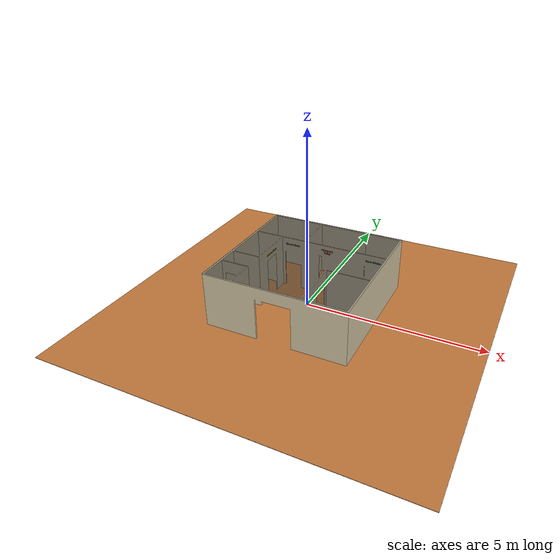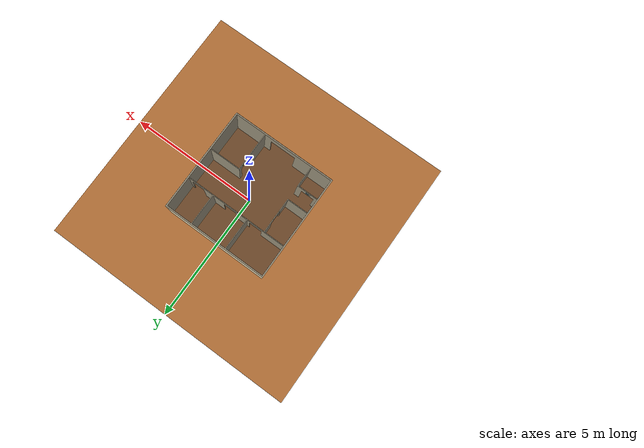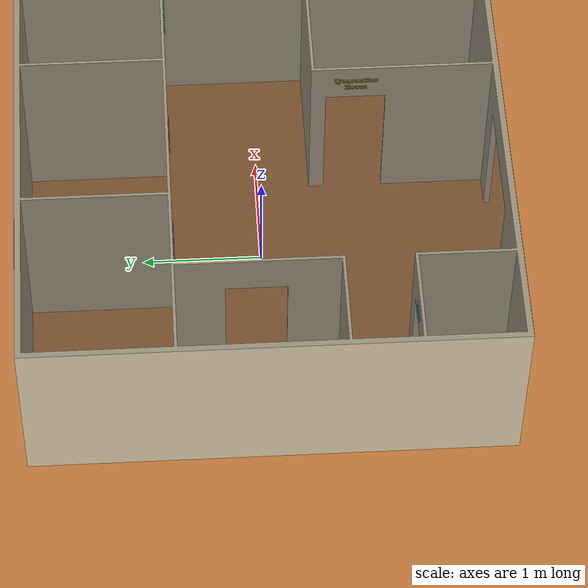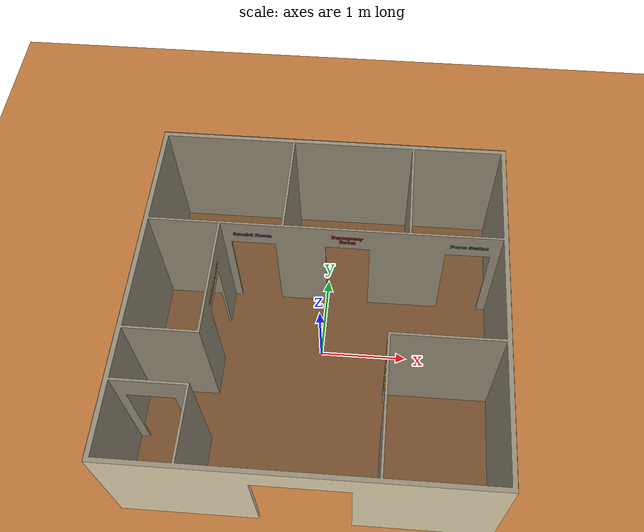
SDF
<?xml version='1.0' encoding='utf-8'?>
<sdf version="1.7">
<world name="hospital_ward">

    <!-- LIGHT -->
    <light name="sun" type="directional">
      <pose>0 0 10 0 0 0</pose>
      <diffuse>1 1 1 1</diffuse>
      <direction>-0.5 0.1 -1</direction>
    </light>

    <gravity>0 0 -9.8</gravity>

    <model name="hospital_ward">
        <static>true</static>

        <link name="floor">
            <pose>0.0 0.0 0.0 0.0 -0.0 0.0</pose>
            <inertial>
                <mass>700.0000000000002</mass>
                <pose>0.0 1.1920928955078121e-15 -0.005 0.0 0.0 0.0</pose>
                <inertia>
                    <ixx>5833.339166666666</ixx>
                    <iyy>5833.339166666671</iyy>
                    <izz>11666.666666666672</izz>
                    <ixy>4.2724609375e-12</ixy>
                    <iyz>7.888609052210118e-31</iyz>
                    <ixz>0.0</ixz>
                </inertia>
            </inertial>
            <visual name="floor_visual">
                <geometry>
                    <mesh>
                        <uri>model://hospital_ward/meshes/floor.stl</uri>
                        <scale>0.001 0.001 0.001</scale>
                    </mesh>
                </geometry>
                <material>
                    <ambient>0.55 0.32 0.15 1</ambient>
                    <diffuse>0.72 0.45 0.22 1</diffuse>
                    <specular>0.15 0.10 0.05 1</specular>
                </material>
            </visual>
            <collision name="floor_collision">
                <geometry>
                    <mesh>
                        <uri>model://hospital_ward/meshes/floor.stl</uri>
                        <scale>0.001 0.001 0.001</scale>
                    </mesh>
                </geometry>
            </collision>
        </link>
        <link name="walls">
            <pose>0.0 0.0 0.0 0.0 -0.0 0.0</pose>
            <inertial>
                <mass>1094.6031250000026</mass>
                <pose>-0.030849187633637296 0.1050802873758504 0.791786906213155 0.0 0.0 0.0</pose>
                <inertia>
                    <ixx>2592.177456302875</ixx>
                    <iyy>2805.2245396439394</iyy>
                    <izz>4949.309080114732</izz>
                    <ixy>-40.26105847663377</ixy>
                    <iyz>15.712100280535424</iyz>
                    <ixz>1.2063336772323154</ixz>
                </inertia>
            </inertial>
            <visual name="walls_visual">
                <geometry>
                    <mesh>
                        <uri>model://hospital_ward/meshes/walls.stl</uri>
                        <scale>0.001 0.001 0.001</scale>
                    </mesh>
                </geometry>
                <material>
                    <ambient>0.85 0.78 0.62 1</ambient>
                    <diffuse>0.96 0.90 0.75 1</diffuse>
                    <specular>0.20 0.18 0.12 1</specular>
                </material>
            </visual>
            <collision name="walls_collision">
                <geometry>
                    <mesh>
                        <uri>model://hospital_ward/meshes/walls.stl</uri>
                        <scale>0.001 0.001 0.001</scale>
                    </mesh>
                </geometry>
            </collision>
        </link>
        <link name="roof">
            <pose>0.0 0.0 0.0 0.0 -0.0 0.0</pose>
            <inertial>
                <mass>1256.0</mass>
                <pose>4.656612873077393e-16 4.656612873077393e-16 1.555 0.0 0.0 0.0</pose>
                <inertia>
                    <ixx>1674.6771333333327</ixx>
                    <iyy>1674.6771333333327</iyy>
                    <izz>3349.3333333333326</izz>
                    <ixy>2.723515857283588e-28</ixy>
                    <iyz>1.5791505575180076e-13</iyz>
                    <ixz>1.5645287930965436e-13</ixz>
                </inertia>
            </inertial>
            <visual name="roof_visual">
                <geometry>
                    <mesh>
                        <uri>model://hospital_ward/meshes/roof.stl</uri>
                        <scale>0.001 0.001 0.001</scale>
                    </mesh>
                </geometry>
                <material>
                    <ambient>0.15 0.15 0.15 0.45</ambient>
                    <diffuse>0.15 0.15 0.15 0.45</diffuse>
                    <specular>0.35 0.45 0.60 0.45</specular>
                    <transparency>0.75</transparency>
                </material>
            </visual>
            <collision name="roof_collision">
                <geometry>
                    <mesh>
                        <uri>model://hospital_ward/meshes/roof.stl</uri>
                        <scale>0.001 0.001 0.001</scale>
                    </mesh>
                </geometry>
            </collision>
        </link>
        <link name="nurse_station">
            <pose>0.0 0.0 0.0 0.0 -0.0 0.0</pose>
            <inertial>
                <mass>0.5737033580672004</mass>
                <pose>1.6071550117818212 0.7450000000000003 1.3607454943415036 0.0 0.0 0.0</pose>
                <inertia>
                    <ixx>9.137893924404672e-05</ixx>
                    <iyy>0.009393644172799753</iyy>
                    <izz>0.009311826956189817</izz>
                    <ixy>0.0</ixy>
                    <iyz>0.0</iyz>
                    <ixz>0.00010574389182349542</ixz>
                </inertia>
            </inertial>
            <visual name="nurse_station_visual">
                <geometry>
                    <mesh>
                        <uri>model://hospital_ward/meshes/nurse_station.stl</uri>
                        <scale>0.001 0.001 0.001</scale>
                    </mesh>
                </geometry>
                <material>
                    <ambient>0.20 0.55 0.30 1</ambient>
                    <diffuse>0.25 0.70 0.35 1</diffuse>
                    <specular>0.20 0.20 0.20 1</specular>
                </material>
            </visual>
            <collision name="nurse_station_collision">
                <geometry>
                    <mesh>
                        <uri>model://hospital_ward/meshes/nurse_station.stl</uri>
                        <scale>0.001 0.001 0.001</scale>
                    </mesh>
                </geometry>
            </collision>
        </link>
        <link name="emergency_room">
            <pose>0.0 0.0 0.0 0.0 -0.0 0.0</pose>
            <inertial>
                <mass>0.7761199603562943</mass>
                <pose>0.24298080950357473 0.7450000000000003 1.3703959767179885 0.0 0.0 0.0</pose>
                <inertia>
                    <ixx>0.0012732438507960797</ixx>
                    <iyy>0.0072690316652743725</iyy>
                    <izz>0.006008723147151673</izz>
                    <ixy>0.0</ixy>
                    <iyz>1.1102230246251565e-16</iyz>
                    <ixz>0.00019928097962074176</ixz>
                </inertia>
            </inertial>
            <visual name="emergency_room_visual">
                <geometry>
                    <mesh>
                        <uri>model://hospital_ward/meshes/emergency_room.stl</uri>
                        <scale>0.001 0.001 0.001</scale>
                    </mesh>
                </geometry>
                <material>
                    <ambient>0.75 0.15 0.12 1</ambient>
                    <diffuse>0.90 0.20 0.15 1</diffuse>
                    <specular>0.20 0.20 0.20 1</specular>
                </material>
            </visual>
            <collision name="emergency_room_collision">
                <geometry>
                    <mesh>
                        <uri>model://hospital_ward/meshes/emergency_room.stl</uri>
                        <scale>0.001 0.001 0.001</scale>
                    </mesh>
                </geometry>
            </collision>
        </link>
        <link name="special_room">
            <pose>0.0 0.0 0.0 0.0 -0.0 0.0</pose>
            <inertial>
                <mass>0.6283107157480153</mass>
                <pose>-0.8166449208407899 0.7450000000000001 1.3576560568693046 0.0 0.0 0.0</pose>
                <inertia>
                    <ixx>0.00011200762586449642</ixx>
                    <iyy>0.010205938383327506</iyy>
                    <izz>0.010104402602725271</izz>
                    <ixy>2.7755575615628914e-16</ixy>
                    <iyz>-1.1102230246251565e-16</iyz>
                    <ixz>-1.5399511376079644e-06</ixz>
                </inertia>
            </inertial>
            <visual name="special_room_visual">
                <geometry>
                    <mesh>
                        <uri>model://hospital_ward/meshes/special_room.stl</uri>
                        <scale>0.001 0.001 0.001</scale>
                    </mesh>
                </geometry>
                <material>
                    <ambient>0.55 0.25 0.65 1</ambient>
                    <diffuse>0.68 0.32 0.78 1</diffuse>
                    <specular>0.20 0.20 0.20 1</specular>
                </material>
            </visual>
            <collision name="special_room_collision">
                <geometry>
                    <mesh>
                        <uri>model://hospital_ward/meshes/special_room.stl</uri>
                        <scale>0.001 0.001 0.001</scale>
                    </mesh>
                </geometry>
            </collision>
        </link>
        <link name="medicine_center">
            <pose>0.0 0.0 0.0 0.0 -0.0 0.0</pose>
            <inertial>
                <mass>0.707826254614348</mass>
                <pose>-1.145 0.08490002565810896 1.3576282688276036 0.0 0.0 0.0</pose>
                <inertia>
                    <ixx>0.01680203116403911</ixx>
                    <iyy>0.00012371430095647895</iyy>
                    <izz>0.016690113967327558</izz>
                    <ixy>1.3877787807814457e-17</ixy>
                    <iyz>0.00016925008051262014</iyz>
                    <ixz>0.0</ixz>
                </inertia>
            </inertial>
            <visual name="medicine_center_visual">
                <geometry>
                    <mesh>
                        <uri>model://hospital_ward/meshes/medicine_center.stl</uri>
                        <scale>0.001 0.001 0.001</scale>
                    </mesh>
                </geometry>
                <material>
                    <ambient>0.85 0.55 0.08 1</ambient>
                    <diffuse>1.00 0.68 0.10 1</diffuse>
                    <specular>0.25 0.25 0.20 1</specular>
                </material>
            </visual>
            <collision name="medicine_center_collision">
                <geometry>
                    <mesh>
                        <uri>model://hospital_ward/meshes/medicine_center.stl</uri>
                        <scale>0.001 0.001 0.001</scale>
                    </mesh>
                </geometry>
            </collision>
        </link>
        <link name="toilet">
            <pose>0.0 0.0 0.0 0.0 -0.0 0.0</pose>
            <inertial>
                <mass>0.26409504653773674</mass>
                <pose>-1.6003754449339551 -1.1450000000000005 1.3750518972284582 0.0 0.0 0.0</pose>
                <inertia>
                    <ixx>5.2862920195351215e-05</ixx>
                    <iyy>0.0006750729579001469</iyy>
                    <izz>0.0006266116218134332</izz>
                    <ixy>1.1102230246251565e-16</ixy>
                    <iyz>-2.7755575615628914e-16</iyz>
                    <ixz>-2.809338190379318e-05</ixz>
                </inertia>
            </inertial>
            <visual name="toilet_visual">
                <geometry>
                    <mesh>
                        <uri>model://hospital_ward/meshes/toilet.stl</uri>
                        <scale>0.001 0.001 0.001</scale>
                    </mesh>
                </geometry>
                <material>
                    <ambient>0.15 0.50 0.70 1</ambient>
                    <diffuse>0.20 0.65 0.85 1</diffuse>
                    <specular>0.30 0.35 0.40 1</specular>
                </material>
            </visual>
            <collision name="toilet_collision">
                <geometry>
                    <mesh>
                        <uri>model://hospital_ward/meshes/toilet.stl</uri>
                        <scale>0.001 0.001 0.001</scale>
                    </mesh>
                </geometry>
            </collision>
        </link>
        <link name="quarantine_room">
            <pose>0.0 0.0 0.0 0.0 -0.0 0.0</pose>
            <inertial>
                <mass>0.816793884515687</mass>
                <pose>0.7450000000000004 -0.8191530642085314 1.3756931976745954 0.0 0.0 0.0</pose>
                <inertia>
                    <ixx>0.008358111797153178</ixx>
                    <iyy>0.001340517161198651</iyy>
                    <izz>0.0070312078673631095</izz>
                    <ixy>0.0</ixy>
                    <iyz>-6.851335077784348e-05</iyz>
                    <ixz>2.220446049250313e-16</ixz>
                </inertia>
            </inertial>
            <visual name="quarantine_room_visual">
                <geometry>
                    <mesh>
                        <uri>model://hospital_ward/meshes/quarantine_room.stl</uri>
                        <scale>0.001 0.001 0.001</scale>
                    </mesh>
                </geometry>
                <material>
                    <ambient>0.65 0.55 0.08 1</ambient>
                    <diffuse>0.80 0.68 0.10 1</diffuse>
                    <specular>0.25 0.25 0.20 1</specular>
                </material>
            </visual>
            <collision name="quarantine_room_collision">
                <geometry>
                    <mesh>
                        <uri>model://hospital_ward/meshes/quarantine_room.stl</uri>
                        <scale>0.001 0.001 0.001</scale>
                    </mesh>
                </geometry>
            </collision>
        </link>
    </model>
</world>
</sdf>
